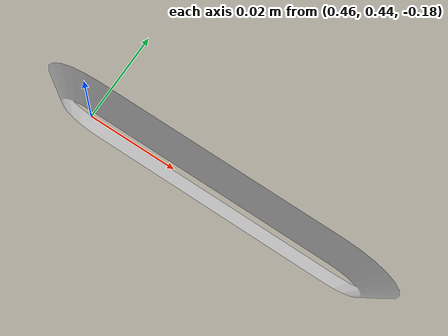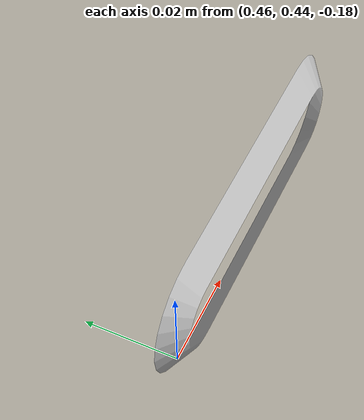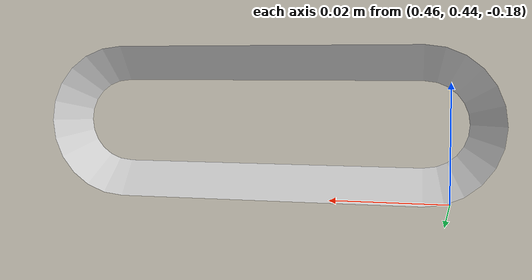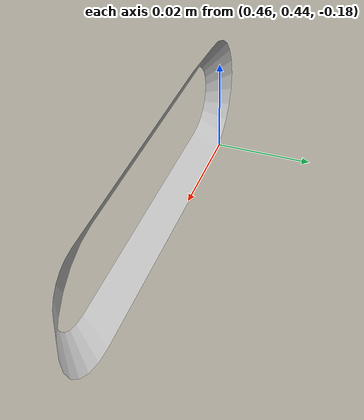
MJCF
<mujoco model="original-66">
  <default>
    <default class="visual">
      <geom group="2" type="mesh" contype="0" conaffinity="0"/>
    </default>
    <default class="collision">
      <geom group="3" type="mesh"/>
    </default>
  </default>
  <asset>
    <material name="material_0_0" specular="0.06666666666666667" shininess="0.03" rgba="0.8 0.8 0.8 1"/>
    <mesh file="original-66.obj"/>
  </asset>
  <worldbody>
    <body name="original-66">
      <geom material="material_0_0" mesh="original-66" class="visual"/>
      <geom mesh="original-66" class="collision"/>
    </body>
  </worldbody>
</mujoco>
